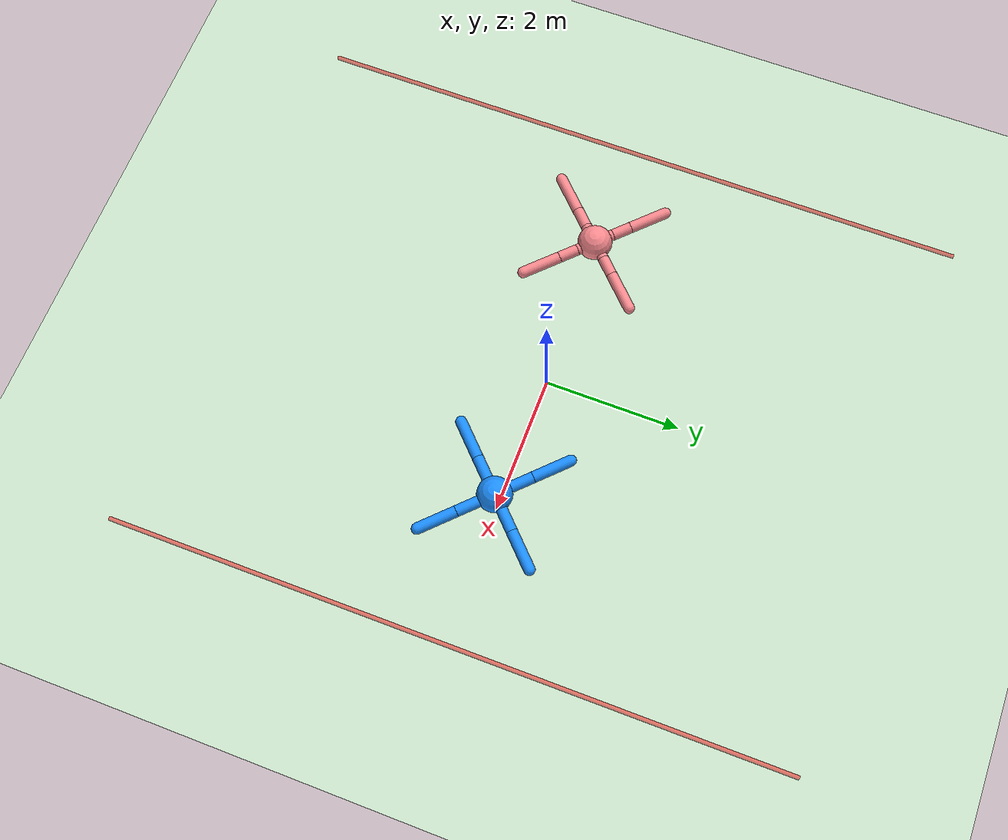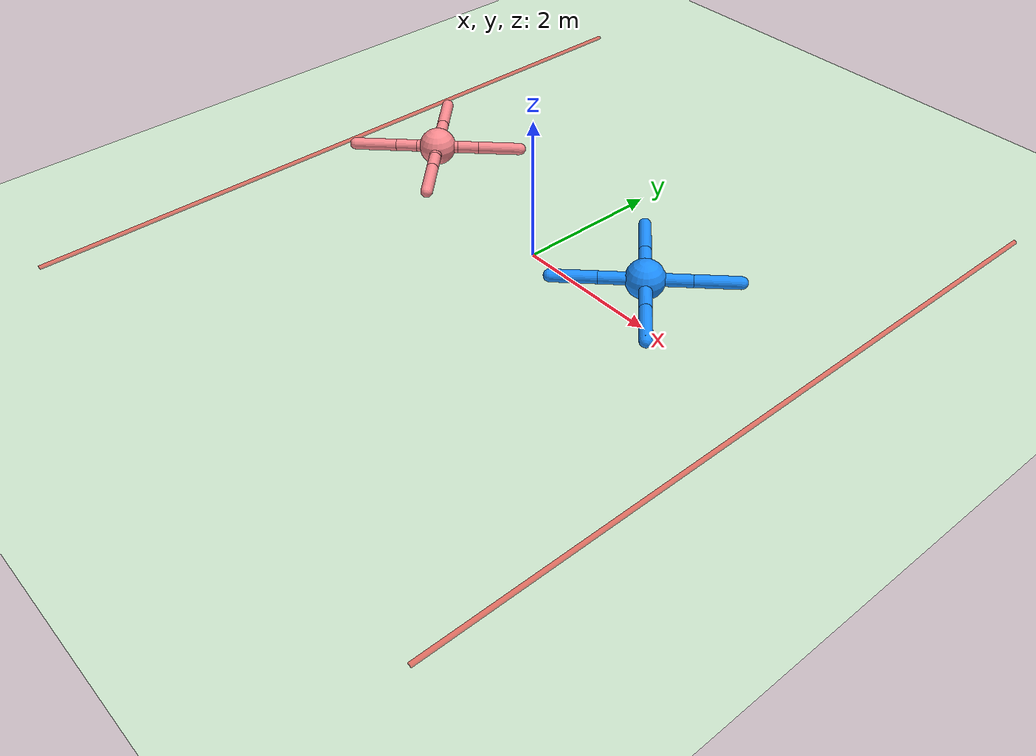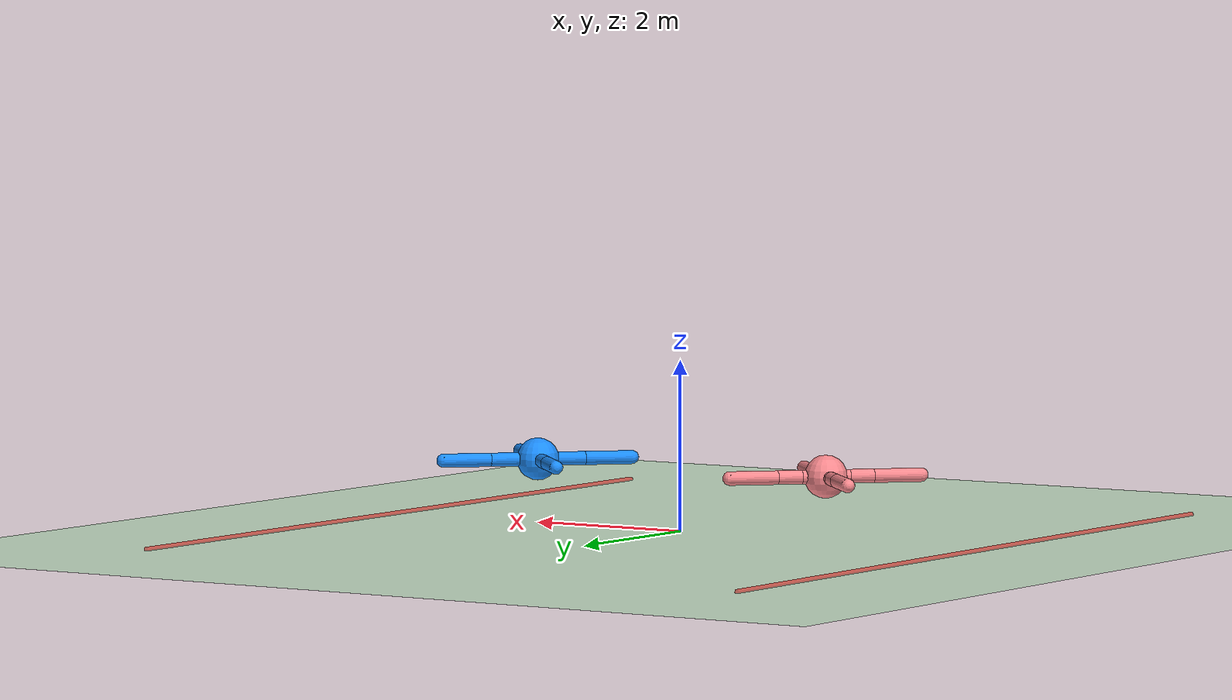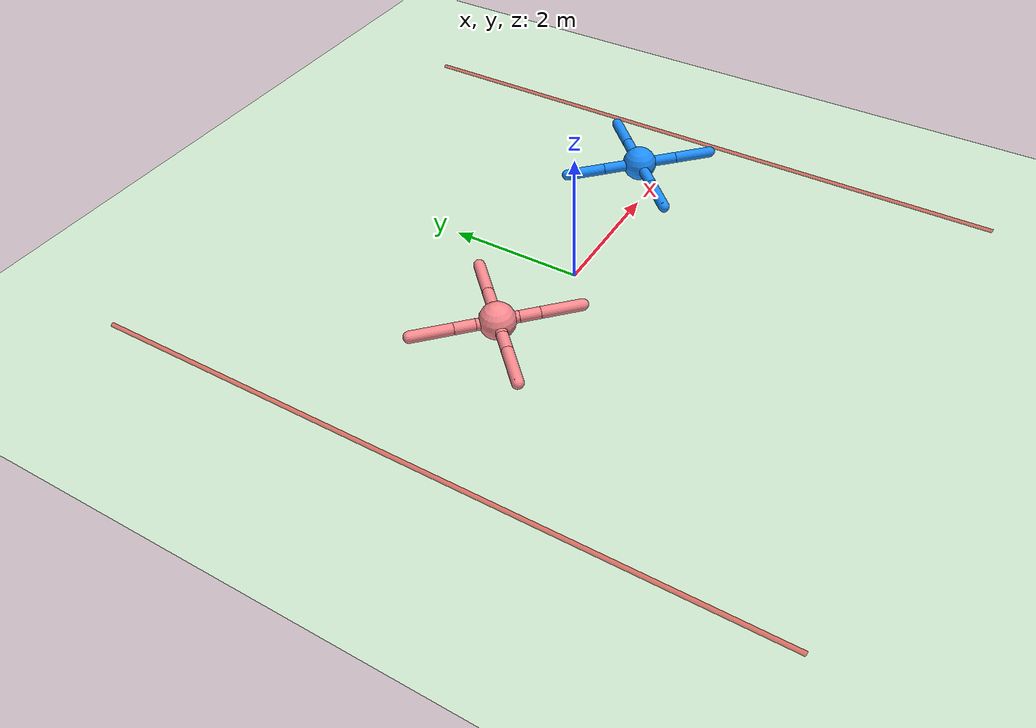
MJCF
<mujoco model="mutiagent_world">
  <compiler angle="degree" coordinate="local" inertiafromgeom="true" />

  <option integrator="RK4" timestep="0.003" solver="PGS" iterations="1000" />

  <default>
    <joint armature="1" damping="1" limited="true" />
  <default class="agent0"><joint armature="1" damping="1" limited="true" />
    <geom conaffinity="0" condim="3" density="5.0" friction="1 0.5 0.5" margin="0.01" rgba="0.98 0.54 0.56 1" material="geom" contype="1" />
    <motor ctrllimited="true" ctrlrange="-.4 .4" />
</default><default class="agent1"><joint armature="1" damping="1" limited="true" />
    <geom conaffinity="1" condim="3" density="5.0" friction="1 0.5 0.5" margin="0.01" rgba="0.11 0.56 1 1" material="geom" contype="0" />
  </default></default>

  <visual>
    <headlight ambient=".1 .1 .1" diffuse=".6 .6 .6" specular="0.3 0.3 0.3" />
    <map znear=".01" />
    <quality shadowsize="16384" />
  </visual>

  <asset>
    <texture builtin="gradient" height="100" rgb1=".4 .5 .6" rgb2="0 0 0" type="skybox" width="100" />
    <texture builtin="flat" height="1278" mark="cross" markrgb="0 0 0" name="texgeom" random="0.01" rgb1="0.8 0.6 0.4" rgb2="1 1 1" type="cube" width="127" />
    <texture builtin="checker" height="100" name="texplane" rgb1="0 0 0" rgb2="0.8 0.8 0.8" type="2d" width="100" />
    <material name="geom" texture="texgeom" texuniform="true" />
    <texture name="MatPlane" type="2d" builtin="checker" rgb1=".4 .4 .4" rgb2=".4 .4 .4" width="300" height="300" mark="edge" markrgb="0.1 0.1 0.1" />
    <material name="MatPlane" texture="MatPlane" texrepeat="2 2" texuniform="true" reflectance=".2" />
  </asset>

  <worldbody>
    <light cutoff="100" diffuse="1 1 1" dir="-0 0 -1.3" directional="true" exponent="1" pos="0 0 1.3" specular=".1 .1 .1" />
    <geom contype="1" conaffinity="1" friction="1 .1 .1" condim="3" material="MatPlane" name="floor" pos="0 0 0" rgba="0.8 0.9 0.8 1" size="20 20 0.125" type="plane" />
    <geom fromto="4 -5 0  4 +5 0" name="rightgoal" rgba="1 0 0 0.5" size=".03" type="cylinder" />
    <geom fromto="-4 -5 0  -4 +5 0" name="leftgoal" rgba="1 0 0 0.5" size=".03" type="cylinder" />
  <body name="agent0/torso" pos="-2 0 0.75" euler="0 0 0">
  <geom name="agent0/torso_geom" pos="0 0 0" size="0.25" type="sphere" class="agent0" />
  <joint armature="0" damping="0" limited="false" margin="0.01" name="agent0/root" pos="0 0 0" range="-30 30" type="free" />
  <body name="agent0/front_left_leg" pos="0 0 0">
    <geom fromto="0.0 0.0 0.0 0.2 0.2 0.0" name="agent0/aux_1_geom" size="0.08" type="capsule" class="agent0" />
    <body name="agent0/aux_1" pos="0.2 0.2 0">
      <joint axis="0 0 1" name="agent0/hip_1" pos="0.0 0.0 0.0" range="-30 30" type="hinge" />
      <geom fromto="0.0 0.0 0.0 0.2 0.2 0.0" name="agent0/left_leg_geom" size="0.08" type="capsule" class="agent0" />
      <body pos="0.2 0.2 0" name="agent0/anon787846415">
        <joint axis="-1 1 0" name="agent0/ankle_1" pos="0.0 0.0 0.0" range="30 70" type="hinge" />
        <geom fromto="0.0 0.0 0.0 0.4 0.4 0.0" name="agent0/left_ankle_geom" size="0.08" type="capsule" class="agent0" />
      </body>
    </body>
  </body>
  <body name="agent0/front_right_leg" pos="0 0 0">
    <geom fromto="0.0 0.0 0.0 -0.2 0.2 0.0" name="agent0/aux_2_geom" size="0.08" type="capsule" class="agent0" />
    <body name="agent0/aux_2" pos="-0.2 0.2 0">
      <joint axis="0 0 1" name="agent0/hip_2" pos="0.0 0.0 0.0" range="-30 30" type="hinge" />
      <geom fromto="0.0 0.0 0.0 -0.2 0.2 0.0" name="agent0/right_leg_geom" size="0.08" type="capsule" class="agent0" />
      <body pos="-0.2 0.2 0" name="agent0/anon2563451925">
        <joint axis="1 1 0" name="agent0/ankle_2" pos="0.0 0.0 0.0" range="-70 -30" type="hinge" />
        <geom fromto="0.0 0.0 0.0 -0.4 0.4 0.0" name="agent0/right_ankle_geom" size="0.08" type="capsule" class="agent0" />
      </body>
    </body>
  </body>
  <body name="agent0/back_leg" pos="0 0 0">
    <geom fromto="0.0 0.0 0.0 -0.2 -0.2 0.0" name="agent0/aux_3_geom" size="0.08" type="capsule" class="agent0" />
    <body name="agent0/aux_3" pos="-0.2 -0.2 0">
      <joint axis="0 0 1" name="agent0/hip_3" pos="0.0 0.0 0.0" range="-30 30" type="hinge" />
      <geom fromto="0.0 0.0 0.0 -0.2 -0.2 0.0" name="agent0/back_leg_geom" size="0.08" type="capsule" class="agent0" />
      <body pos="-0.2 -0.2 0" name="agent0/anon9019323607">
        <joint axis="-1 1 0" name="agent0/ankle_3" pos="0.0 0.0 0.0" range="-70 -30" type="hinge" />
        <geom fromto="0.0 0.0 0.0 -0.4 -0.4 0.0" name="agent0/third_ankle_geom" size="0.08" type="capsule" class="agent0" />
      </body>
    </body>
  </body>
  <body name="agent0/right_back_leg" pos="0 0 0">
    <geom fromto="0.0 0.0 0.0 0.2 -0.2 0.0" name="agent0/aux_4_geom" size="0.08" type="capsule" class="agent0" />
    <body name="agent0/aux_4" pos="0.2 -0.2 0">
      <joint axis="0 0 1" name="agent0/hip_4" pos="0.0 0.0 0.0" range="-30 30" type="hinge" />
      <geom fromto="0.0 0.0 0.0 0.2 -0.2 0.0" name="agent0/rightback_leg_geom" size="0.08" type="capsule" class="agent0" />
      <body pos="0.2 -0.2 0" name="agent0/anon4537253173">
        <joint axis="1 1 0" name="agent0/ankle_4" pos="0.0 0.0 0.0" range="30 70" type="hinge" />
        <geom fromto="0.0 0.0 0.0 0.4 -0.4 0.0" name="agent0/fourth_ankle_geom" size="0.08" type="capsule" class="agent0" />
      </body>
    </body>
  </body>
</body>

<body name="agent1/0" pos="2 0 0.75" euler="0 0 180">
    <geom pos="0 0 0" size="0.25" type="sphere" class="agent1" name="agent1/anon7395928408" />
    <joint armature="0" damping="0" limited="false" margin="0.01" name="agent1/0_joint" pos="0 0 0" range="-30 30" type="free" />
    <body name="agent1/1" pos="0 0 0">
      <geom fromto="0 0 0 0.4 0.4 0" size="0.08" type="capsule" class="agent1" name="agent1/anon4298312066" />
      <joint axis="0 0 1" name="agent1/1_joint" pos="0 0 0" range="-30 30" type="hinge" />
      <body name="agent1/11" pos="0.4 0.4 0">
        <geom fromto="0 0 0 0.4 0.4 0" size="0.08" type="capsule" class="agent1" name="agent1/anon2652062881" />
        <joint axis="-0.707107 0.707107 0" name="agent1/11_joint" pos="0 0 0" range="-60 60" type="hinge" />
      </body>
    </body>
    <body name="agent1/2" pos="0 0 0">
      <geom fromto="0 0 0 -0.4 0.4 0" size="0.08" type="capsule" class="agent1" name="agent1/anon4325316861" />
      <joint axis="0 0 1" name="agent1/2_joint" pos="0 0 0" range="-30 30" type="hinge" />
      <body name="agent1/12" pos="-0.4 0.4 0">
        <geom fromto="0 0 0 -0.4 0.4 0" size="0.08" type="capsule" class="agent1" name="agent1/anon2253890011" />
        <joint axis="-0.707107 -0.707107 0" name="agent1/12_joint" pos="0 0 0" range="-60 60" type="hinge" />
      </body>
    </body>
    <body name="agent1/3" pos="0 0 0">
      <geom fromto="0 0 0 -0.4 -0.4 0" size="0.08" type="capsule" class="agent1" name="agent1/anon4495394816" />
      <joint axis="0 0 1" name="agent1/3_joint" pos="0 0 0" range="-30 30" type="hinge" />
      <body name="agent1/13" pos="-0.4 -0.4 0">
        <geom fromto="0 0 0 -0.4 -0.4 0" size="0.08" type="capsule" class="agent1" name="agent1/anon4684118974" />
        <joint axis="0.707107 -0.707107 0" name="agent1/13_joint" pos="0 0 0" range="-60 60" type="hinge" />
      </body>
    </body>
    <body name="agent1/4" pos="0 0 0">
      <geom fromto="0 0 0 0.4 -0.4 0" size="0.08" type="capsule" class="agent1" name="agent1/anon1934879561" />
      <joint axis="0 0 1" name="agent1/4_joint" pos="0 0 0" range="-30 30" type="hinge" />
      <body name="agent1/14" pos="0.4 -0.4 0">
        <geom fromto="0 0 0 0.4 -0.4 0" size="0.08" type="capsule" class="agent1" name="agent1/anon8646907154" />
        <joint axis="0.707107 0.707107 0" name="agent1/14_joint" pos="0 0 0" range="-60 60" type="hinge" />
      </body>
    </body>
  </body>

  </worldbody>
<actuator>
  <motor ctrllimited="true" ctrlrange="-1.0 1.0" joint="agent0/hip_4" gear="150" class="agent0" />
  <motor ctrllimited="true" ctrlrange="-1.0 1.0" joint="agent0/ankle_4" gear="150" class="agent0" />
  <motor ctrllimited="true" ctrlrange="-1.0 1.0" joint="agent0/hip_1" gear="150" class="agent0" />
  <motor ctrllimited="true" ctrlrange="-1.0 1.0" joint="agent0/ankle_1" gear="150" class="agent0" />
  <motor ctrllimited="true" ctrlrange="-1.0 1.0" joint="agent0/hip_2" gear="150" class="agent0" />
  <motor ctrllimited="true" ctrlrange="-1.0 1.0" joint="agent0/ankle_2" gear="150" class="agent0" />
  <motor ctrllimited="true" ctrlrange="-1.0 1.0" joint="agent0/hip_3" gear="150" class="agent0" />
  <motor ctrllimited="true" ctrlrange="-1.0 1.0" joint="agent0/ankle_3" gear="150" class="agent0" />
<motor ctrllimited="true" ctrlrange="-1.0 1.0" joint="agent1/1_joint" gear="150" name="agent1/1_joint" class="agent1" />
    <motor ctrllimited="true" ctrlrange="-1.0 1.0" joint="agent1/2_joint" gear="150" name="agent1/2_joint" class="agent1" />
    <motor ctrllimited="true" ctrlrange="-1.0 1.0" joint="agent1/3_joint" gear="150" name="agent1/3_joint" class="agent1" />
    <motor ctrllimited="true" ctrlrange="-1.0 1.0" joint="agent1/4_joint" gear="150" name="agent1/4_joint" class="agent1" />
    <motor ctrllimited="true" ctrlrange="-1.0 1.0" joint="agent1/11_joint" gear="150" name="agent1/11_joint" class="agent1" />
    <motor ctrllimited="true" ctrlrange="-1.0 1.0" joint="agent1/12_joint" gear="150" name="agent1/12_joint" class="agent1" />
    <motor ctrllimited="true" ctrlrange="-1.0 1.0" joint="agent1/13_joint" gear="150" name="agent1/13_joint" class="agent1" />
    <motor ctrllimited="true" ctrlrange="-1.0 1.0" joint="agent1/14_joint" gear="150" name="agent1/14_joint" class="agent1" />
  </actuator>

</mujoco>
